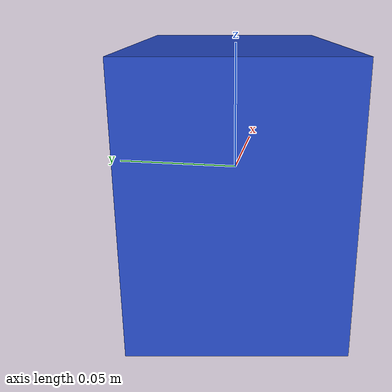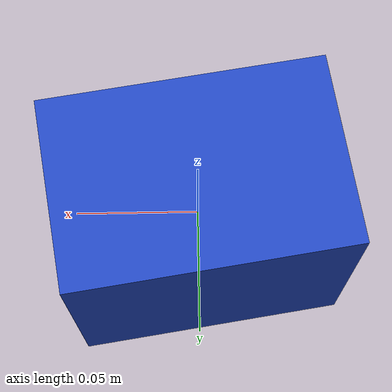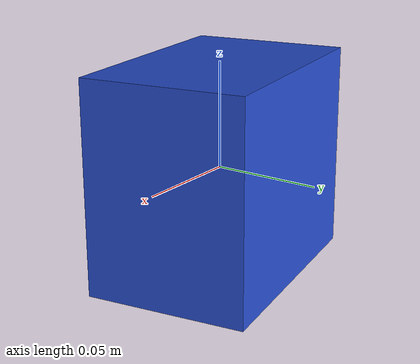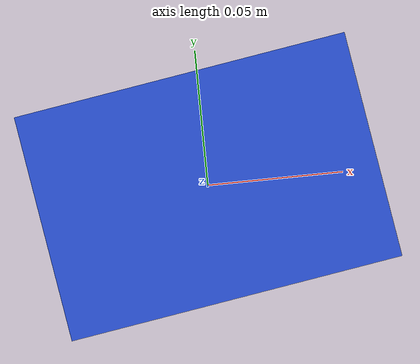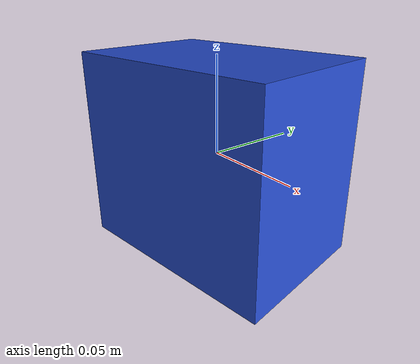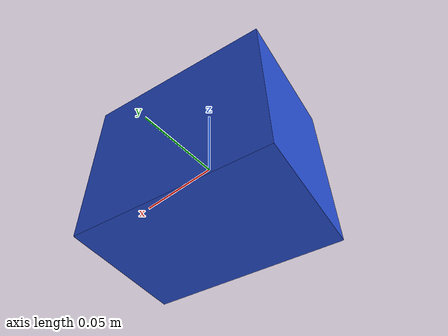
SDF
<sdf version="1.6"><model name="model_15"><static>true</static><link name="link"><pose>0 0 0 0 0 0.15470563750490998</pose><collision name="collision"><geometry><box><size>0.11206875554006182 0.07584986029657564 0.1</size></box></geometry></collision><visual name="visual"><geometry><box><size>0.11206875554006182 0.07584986029657564 0.1</size></box></geometry><material><script><name>Gazebo/Blue</name><uri>file://media/materials/scripts/gazebo.material</uri></script></material></visual></link></model></sdf>
